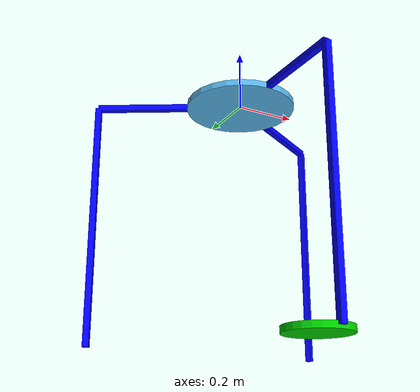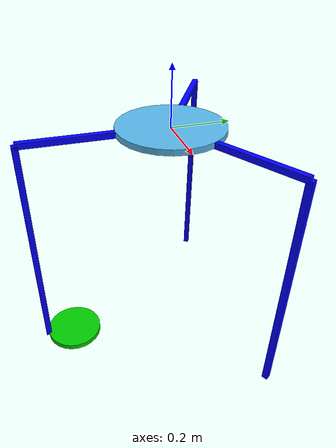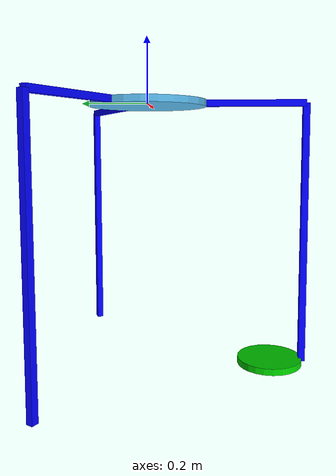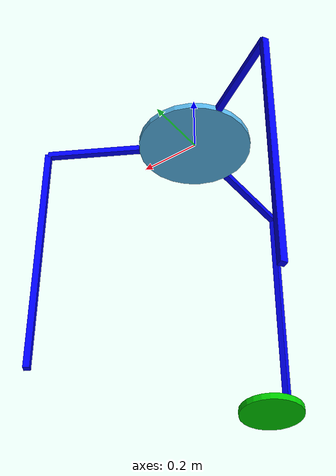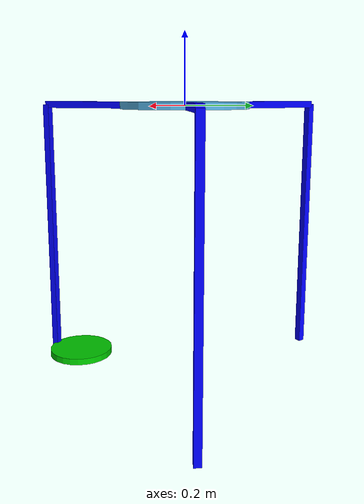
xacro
<?xml version="1.0"?>
<!-- Robot Name -->
<robot name="delta_robot" xmlns:xacro="http://www.ros.org/wiki/xacro">

  <!-- BGN - Include -->
  <xacro:include filename="$(find delta_robot_description)/urdf/parameter_delta.xacro" />
  <xacro:include filename="$(find delta_robot_description)/urdf/linkjoint_delta.xacro" />
  <!-- END - Include -->

<!-- Used for fixing robot to Gazebo 'base_link' -->
  <link name="world">
  </link>

  <joint name="fixed" type="fixed">
    <origin rpy="0 0 0" xyz="0 0 0" />
    <parent link="world"/>
    <child link="base_link"/>
  </joint>

<!-- Base -->

 <m_link_cylinder name="${link_00_name}"
              origin_rpy="0 0 0" origin_xyz="0 0 0"
              mass="47"
              ixx="1.765" ixy="0" ixz="0"
              iyy="1.765" iyz="0"
              izz="3.217"
              radius="0.18" length="0.02" />

<!-- Arm 1 -->

 <m_joint name="joint1" type="revolute"
           axis_xyz="0 1 0"
           origin_rpy="0 0 -1.5708" origin_xyz="0 -0.180 0"
           parent="base_link" child="arm_1"
           limit_e="1000" limit_l="-1.5708" limit_u="1.5708" limit_v="0.5" />

 <m_link_box name="${link_01_name}"
              origin_rpy="0 0 0" origin_xyz="0.15 0 0"
              mass="0.5"
              ixx="0.065" ixy="0" ixz="0"
              iyy="0.065" iyz="0"
              izz="0.005"
              size="0.3 0.02 0.02" />

 <!-- Down Part Arm 1 -->

   <m_joint name="joint2" type="revolute"
           axis_xyz="0 1 0"
           origin_rpy="0 1.5708 0" origin_xyz="0.300 0 0"
           parent="arm_1" child="down_arm_1"
           limit_e="1000" limit_l="-1.5708" limit_u="1.5708" limit_v="0.5" />

  <m_link_box name="${link_02_name}"
              origin_rpy="0 0 0" origin_xyz="0.4 0 0"
              mass="0.5"
              ixx="0.065" ixy="0" ixz="0"
              iyy="0.065" iyz="0"
              izz="0.005"
              size="0.8 0.02 0.02" />

    <!-- End efector -->

  <m_joint name="joint3" type="revolute"
           axis_xyz="0 1 0"
           origin_rpy="0 1.5708 0" origin_xyz="0.800 0 0"
           parent="down_arm_1" child="tool0"
           limit_e="1000" limit_l="-1.5708" limit_u="1.5708" limit_v="0.5" />

 <m_link_tool name="${link_03_name}"
              origin_rpy="0 0 0" origin_xyz="0.1 0 0"
              mass="47"
              ixx="1.765" ixy="0" ixz="0"
              iyy="1.765" iyz="0"
              izz="3.217"
              radius="0.100" length="0.02" />

    <!-- Arm 2 -->

 <m_joint name="joint4" type="revolute"
           axis_xyz="0 1 0"
           origin_rpy="0 0 0.5236" origin_xyz="0.155885 0.09 0"
           parent="base_link" child="arm_2"
           limit_e="1000" limit_l="-1.5708" limit_u="1.5708" limit_v="0.5" />

 <m_link_box name="${link_04_name}"
              origin_rpy="0 0 0" origin_xyz="0.15 0 0"
              mass="0.5"
              ixx="0.065" ixy="0" ixz="0"
              iyy="0.065" iyz="0"
              izz="0.005"
              size="0.3 0.02 0.02" />

<!-- Down Part Arm 2 -->

   <m_joint name="joint5" type="revolute"
           axis_xyz="0 1 0"
           origin_rpy="0 1.5708 0" origin_xyz="0.300 0 0"
           parent="arm_2" child="down_arm_2"
           limit_e="1000" limit_l="-1.5708" limit_u="1.5708" limit_v="0.5" />

  <m_link_box name="${link_05_name}"
              origin_rpy="0 0 0" origin_xyz="0.4 0 0"
              mass="0.5"
              ixx="0.065" ixy="0" ixz="0"
              iyy="0.065" iyz="0"
              izz="0.005"
              size="0.8 0.02 0.02" />

    <!-- Arm 3 -->
<m_joint name="joint6" type="revolute"
           axis_xyz="0 1 0"
           origin_rpy="0 0 2.618" origin_xyz="-0.155885 0.09 0"
           parent="base_link" child="arm_3"
           limit_e="1000" limit_l="-1.5708" limit_u="1.5708" limit_v="0.5" />

 <m_link_box name="${link_06_name}"
              origin_rpy="0 0 0" origin_xyz="0.15 0 0"
              mass="0.5"
              ixx="0.065" ixy="0" ixz="0"
              iyy="0.065" iyz="0"
              izz="0.005"
              size="0.3 0.02 0.02" />

<!-- Down Part Arm 3 -->

   <m_joint name="joint7" type="revolute"
           axis_xyz="0 1 0"
           origin_rpy="0 1.5708 0" origin_xyz="0.300 0 0"
           parent="arm_3" child="down_arm_3"
           limit_e="1000" limit_l="-1.5708" limit_u="1.5708" limit_v="0.5" />

  <m_link_box name="${link_07_name}"
              origin_rpy="0 0 0" origin_xyz="0.4 0 0"
              mass="0.5"
              ixx="0.065" ixy="0" ixz="0"
              iyy="0.065" iyz="0"
              izz="0.005"
              size="0.8 0.02 0.02" />

    <gazebo>
    <plugin name="gazebo_ros_control" filename="libgazebo_ros_control.so">
    </plugin>
    </gazebo>

</robot>

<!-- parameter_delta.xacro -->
<robot xmlns:xacro="http://www.ros.org/wiki/xacro">
  <xacro:property name="link_00_name" value="base_link" />
  <xacro:property name="link_01_name" value="arm_1" />
  <xacro:property name="link_02_name" value="down_arm_1" />
  <xacro:property name="link_03_name" value="tool0" />
  <xacro:property name="link_04_name" value="arm_2" />
  <xacro:property name="link_05_name" value="down_arm_2" />
  <xacro:property name="link_06_name" value="arm_3" />
  <xacro:property name="link_07_name" value="down_arm_3" />
</robot>

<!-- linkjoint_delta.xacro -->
<robot xmlns:xacro="http://www.ros.org/wiki/xacro">

  <xacro:macro name="m_joint" params="name type axis_xyz origin_rpy origin_xyz parent child limit_e limit_l limit_u limit_v">
    <joint name="${name}" type="${type}">
      <axis xyz="${axis_xyz}" />
      <limit effort="${limit_e}" lower="${limit_l}" upper="${limit_u}" velocity="${limit_v}" />
      <origin rpy="${origin_rpy}" xyz="${origin_xyz}" />
      <parent link="${parent}" />
      <child link="${child}" />
    </joint>
    <transmission name="trans_${name}">
      <type>transmission_interface/SimpleTransmission</type>
      <joint name="${name}">
        <hardwareInterface>hardware_interface/EffortJointInterface</hardwareInterface>
      </joint>
      <actuator name="motor_${name}">
        <hardwareInterface>hardware_interface/EffortJointInterface</hardwareInterface>
        <mechanicalReduction>1</mechanicalReduction>
      </actuator>
    </transmission>
  </xacro:macro>

  <xacro:macro name="m_link_cylinder" params="name origin_xyz origin_rpy radius length mass ixx ixy ixz iyy iyz izz">
    <link name="${name}">
      <inertial>
        <mass value="${mass}" />
        <origin rpy="${origin_rpy}" xyz="${origin_xyz}" />
        <inertia ixx="${ixx}" ixy="${ixy}" ixz="${ixz}" iyy="${iyy}" iyz="${iyz}" izz="${izz}" />
      </inertial>
      <collision>
        <origin rpy="${origin_rpy}" xyz="${origin_xyz}" />
        <geometry>
          <cylinder radius="${radius}" length="${length}" />
        </geometry>
      </collision>
      <visual>
        <origin rpy="${origin_rpy}" xyz="${origin_xyz}" />
        <geometry>
          <cylinder radius="${radius}" length="${length}" />
        </geometry>
      </visual>
    </link>
  </xacro:macro>

    <xacro:macro name="m_link_tool" params="name origin_xyz origin_rpy radius length mass ixx ixy ixz iyy iyz izz">
    <link name="${name}">
      <inertial>
        <mass value="${mass}" />
        <origin rpy="${origin_rpy}" xyz="${origin_xyz}" />
        <inertia ixx="${ixx}" ixy="${ixy}" ixz="${ixz}" iyy="${iyy}" iyz="${iyz}" izz="${izz}" />
      </inertial>
      <collision>
        <origin rpy="${origin_rpy}" xyz="${origin_xyz}" />
        <geometry>
          <cylinder radius="${radius}" length="${length}" />
        </geometry>
      </collision>
      <visual>
        <origin rpy="${origin_rpy}" xyz="${origin_xyz}" />
        <geometry>
          <cylinder radius="${radius}" length="${length}" />
        </geometry>
        <material name="green">
            <color rgba="0 0.8 0 1"/>
        </material>
      </visual>
    </link>
  </xacro:macro>

  <xacro:macro name="m_link_box" params="name origin_xyz origin_rpy size mass ixx ixy ixz iyy iyz izz">
    <link name="${name}">
      <inertial>
        <mass value="${mass}" />
        <origin rpy="${origin_rpy}" xyz="${origin_xyz}" />
        <inertia ixx="${ixx}" ixy="${ixy}" ixz="${ixz}" iyy="${iyy}" iyz="${iyz}" izz="${izz}" />
      </inertial>
      <collision>
        <origin rpy="${origin_rpy}" xyz="${origin_xyz}" />
        <geometry>
          <box size="${size}" />
        </geometry>
      </collision>
      <visual>
        <origin rpy="${origin_rpy}" xyz="${origin_xyz}" />
        <geometry>
          <box size="${size}" />
        </geometry>
        <material name="blue">
            <color rgba="0 0 1 1"/>
        </material>
      </visual>
    </link>
  </xacro:macro>

  <xacro:macro name="m_link_mesh" params="name origin_xyz origin_rpy meshfile meshscale mass ixx ixy ixz iyy iyz izz">
    <link name="${name}">
      <inertial>
        <mass value="${mass}" />
        <origin rpy="${origin_rpy}" xyz="${origin_xyz}" />
        <inertia ixx="${ixx}" ixy="${ixy}" ixz="${ixz}" iyy="${iyy}" iyz="${iyz}" izz="${izz}" />
      </inertial>
      <collision>
        <origin rpy="${origin_rpy}" xyz="${origin_xyz}" />
        <geometry>
          <mesh filename="${meshfile}" scale="${meshscale}"/>
        </geometry>
      </collision>
      <visual>
        <origin rpy="${origin_rpy}" xyz="${origin_xyz}" />
        <geometry>
          <mesh filename="${meshfile}" scale="${meshscale}"/>
        </geometry>
        <material name="light_black"/>
      </visual>
    </link>
  </xacro:macro>

</robot>
